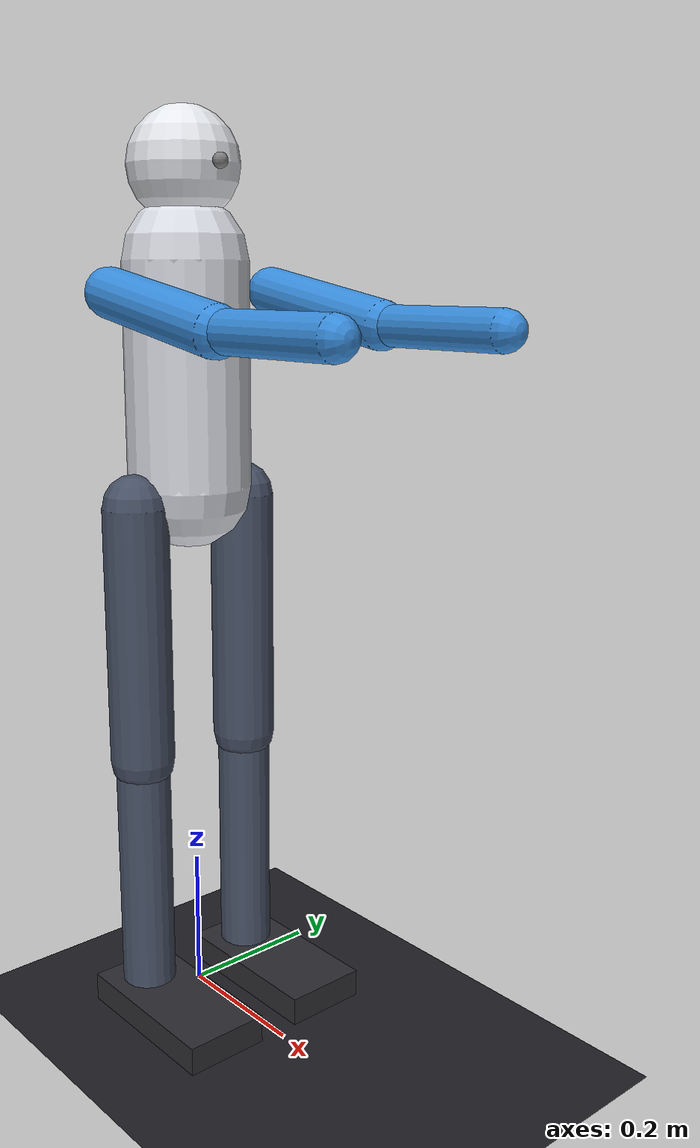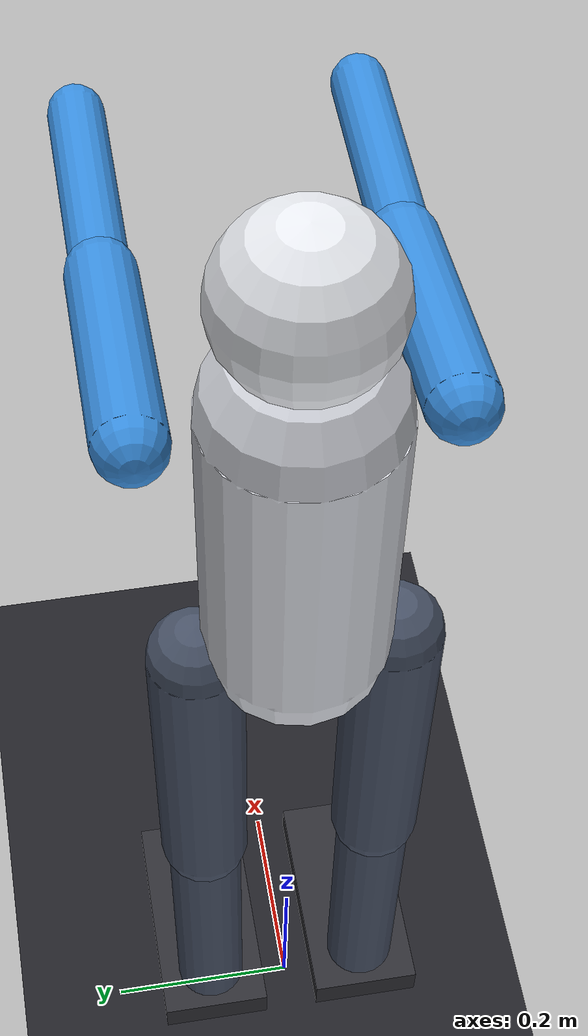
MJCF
<mujoco model="humanoid">
  <compiler angle="radian" autolimits="true"/>
  <option timestep="0.005" gravity="0 0 -9.81" integrator="implicitfast"/>
  <visual>
    <global offwidth="640" offheight="480"/>
    <headlight ambient="0.42 0.42 0.48" diffuse="0.55 0.55 0.55"/>
  </visual>
  <default>
    <joint damping="4" armature="0.02" actuatorgravcomp="true"/>
    <geom condim="3" friction="1.6 0.1 0.1" solref="0.012 1"/>
    <position kp="280" dampratio="1.2"/>
  </default>
  <asset>
    <texture name="grid" type="2d" builtin="checker" width="256" height="256"
             rgb1="0.10 0.10 0.12" rgb2="0.16 0.16 0.18"/>
    <material name="grid" texture="grid" texrepeat="8 8" texuniform="true"/>
  </asset>
  <worldbody>
    <light pos="0.4 -2.2 4.0" dir="0 0.25 -1" diffuse="1 1 1"/>
    <geom type="plane" size="6 6 0.05" material="grid"/>
    <camera name="demo" pos="2.6 -2.8 1.45" mode="targetbody" target="torso" fovy="46"/>

    <body name="torso" pos="0 0 0.90">
      <freejoint name="root"/>
      <geom name="torso" type="capsule" fromto="0 0 -0.14 0 0 0.16" size="0.085"
            rgba="0.86 0.87 0.90 1" mass="9"/>
      <geom name="head" type="sphere" pos="0 0 0.28" size="0.075"
            rgba="0.90 0.91 0.93 1" mass="1.2"/>
      <site name="gaze" pos="0.08 0 0.28" size="0.01"/>

      <body name="r_upper_arm" pos="0.02 -0.13 0.12">
        <joint name="r_shoulder" type="hinge" axis="0 1 0" range="-1.6 1.8"/>
        <joint name="r_shoulder_x" type="hinge" axis="1 0 0" range="-1.3 1.3"/>
        <geom type="capsule" fromto="0 0 0 0.22 0 -0.04" size="0.032" rgba="0.22 0.55 0.86 1" mass="1.1"/>
        <body name="r_lower_arm" pos="0.22 0 -0.04">
          <joint name="r_elbow" type="hinge" axis="0 1 0" range="-2.2 0.1"/>
          <geom type="capsule" fromto="0 0 0 0.20 0 0" size="0.026" rgba="0.22 0.55 0.86 1" mass="0.7"/>
        </body>
      </body>
      <body name="l_upper_arm" pos="0.02 0.13 0.12">
        <joint name="l_shoulder" type="hinge" axis="0 1 0" range="-1.6 1.8"/>
        <joint name="l_shoulder_x" type="hinge" axis="1 0 0" range="-1.3 1.3"/>
        <geom type="capsule" fromto="0 0 0 0.22 0 -0.04" size="0.032" rgba="0.22 0.55 0.86 1" mass="1.1"/>
        <body name="l_lower_arm" pos="0.22 0 -0.04">
          <joint name="l_elbow" type="hinge" axis="0 1 0" range="-2.2 0.1"/>
          <geom type="capsule" fromto="0 0 0 0.20 0 0" size="0.026" rgba="0.22 0.55 0.86 1" mass="0.7"/>
        </body>
      </body>

      <body name="r_thigh" pos="0 -0.09 -0.16">
        <joint name="r_hip_x" type="hinge" axis="1 0 0" range="-0.6 0.6"/>
        <joint name="r_hip_z" type="hinge" axis="0 0 1" range="-0.8 0.8"/>
        <joint name="r_hip_y" type="hinge" axis="0 1 0" range="-1.4 0.5"/>
        <geom type="capsule" fromto="0 0 0 0 0 -0.36" size="0.045" rgba="0.28 0.32 0.40 1" mass="3.2"/>
        <body name="r_shin" pos="0 0 -0.36">
          <joint name="r_knee" type="hinge" axis="0 1 0" range="0 2.1"/>
          <geom type="capsule" fromto="0 0 0 0 0 -0.34" size="0.038" rgba="0.28 0.32 0.40 1" mass="2.0"/>
          <body name="r_foot" pos="0 0 -0.34">
            <joint name="r_ankle" type="hinge" axis="0 1 0" range="-0.8 0.8"/>
            <joint name="r_ankle_z" type="hinge" axis="0 0 1" range="-0.8 0.8"/>
            <geom name="r_foot" type="box" size="0.12 0.06 0.02" pos="0.07 0 -0.02"
                  rgba="0.18 0.18 0.20 1" mass="0.9"/>
          </body>
        </body>
      </body>
      <body name="l_thigh" pos="0 0.09 -0.16">
        <joint name="l_hip_x" type="hinge" axis="1 0 0" range="-0.6 0.6"/>
        <joint name="l_hip_z" type="hinge" axis="0 0 1" range="-0.8 0.8"/>
        <joint name="l_hip_y" type="hinge" axis="0 1 0" range="-1.4 0.5"/>
        <geom type="capsule" fromto="0 0 0 0 0 -0.36" size="0.045" rgba="0.28 0.32 0.40 1" mass="3.2"/>
        <body name="l_shin" pos="0 0 -0.36">
          <joint name="l_knee" type="hinge" axis="0 1 0" range="0 2.1"/>
          <geom type="capsule" fromto="0 0 0 0 0 -0.34" size="0.038" rgba="0.28 0.32 0.40 1" mass="2.0"/>
          <body name="l_foot" pos="0 0 -0.34">
            <joint name="l_ankle" type="hinge" axis="0 1 0" range="-0.8 0.8"/>
            <joint name="l_ankle_z" type="hinge" axis="0 0 1" range="-0.8 0.8"/>
            <geom name="l_foot" type="box" size="0.12 0.06 0.02" pos="0.07 0 -0.02"
                  rgba="0.18 0.18 0.20 1" mass="0.9"/>
          </body>
        </body>
      </body>
    </body>
  </worldbody>
  <actuator>
    <position joint="r_shoulder" ctrlrange="-1.6 1.8"/>
    <position joint="r_shoulder_x" ctrlrange="-1.3 1.3"/>
    <position joint="r_elbow" ctrlrange="-2.2 0.1"/>
    <position joint="l_shoulder" ctrlrange="-1.6 1.8"/>
    <position joint="l_shoulder_x" ctrlrange="-1.3 1.3"/>
    <position joint="l_elbow" ctrlrange="-2.2 0.1"/>
    <position joint="r_hip_x" ctrlrange="-0.6 0.6"/>
    <position joint="r_hip_z" ctrlrange="-0.8 0.8"/>
    <position joint="r_hip_y" ctrlrange="-1.4 0.5"/>
    <position joint="r_knee" ctrlrange="0 2.1"/>
    <position joint="r_ankle" ctrlrange="-0.8 0.8"/>
    <position joint="r_ankle_z" kp="110" dampratio="1.0" ctrlrange="-0.8 0.8"/>
    <position joint="l_hip_x" ctrlrange="-0.6 0.6"/>
    <position joint="l_hip_z" ctrlrange="-0.8 0.8"/>
    <position joint="l_hip_y" ctrlrange="-1.4 0.5"/>
    <position joint="l_knee" ctrlrange="0 2.1"/>
    <position joint="l_ankle" ctrlrange="-0.8 0.8"/>
    <position joint="l_ankle_z" kp="110" dampratio="1.0" ctrlrange="-0.8 0.8"/>
  </actuator>
  <keyframe>
    <key name="stand" qpos="0 0 0.90  1 0 0 0
         1.45 0 -0.20  1.45 0 -0.20
         0 0 -0.18 0.36 -0.16 0
         0 0 -0.18 0.36 -0.16 0"/>
  </keyframe>
</mujoco>
